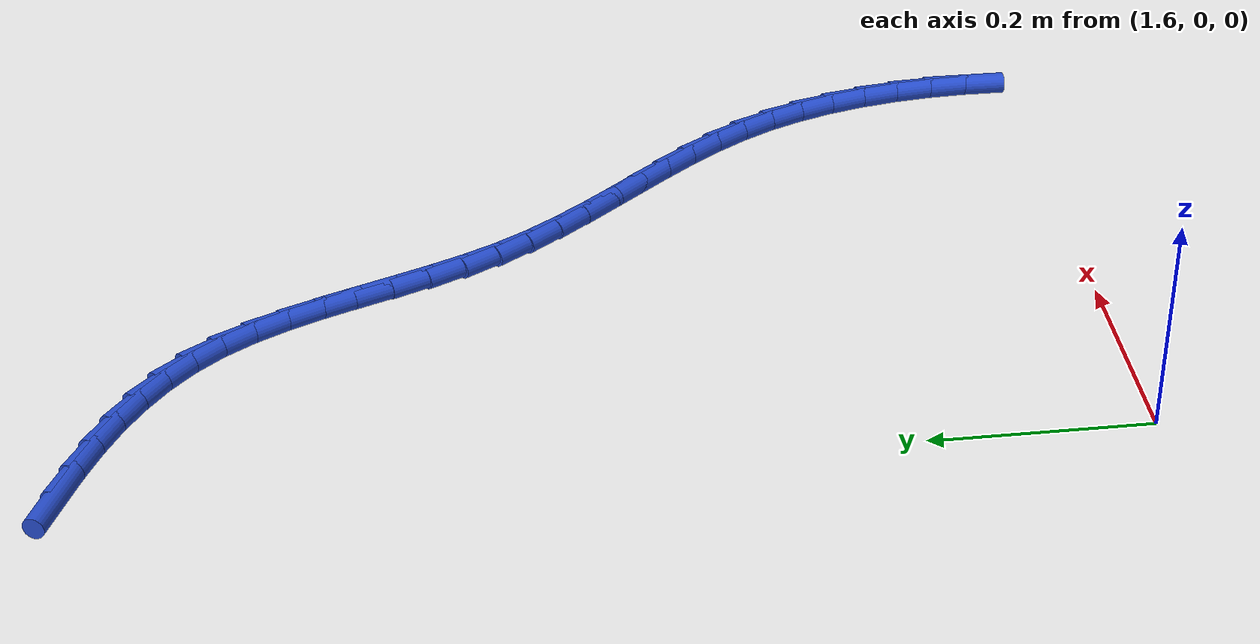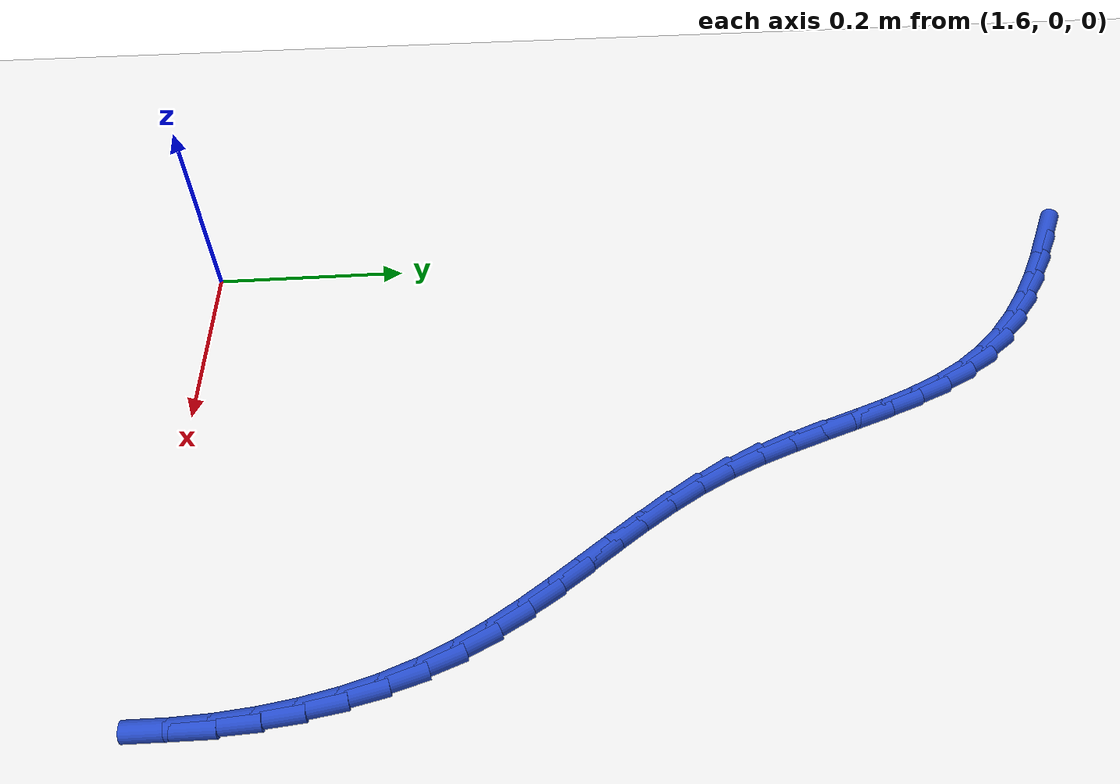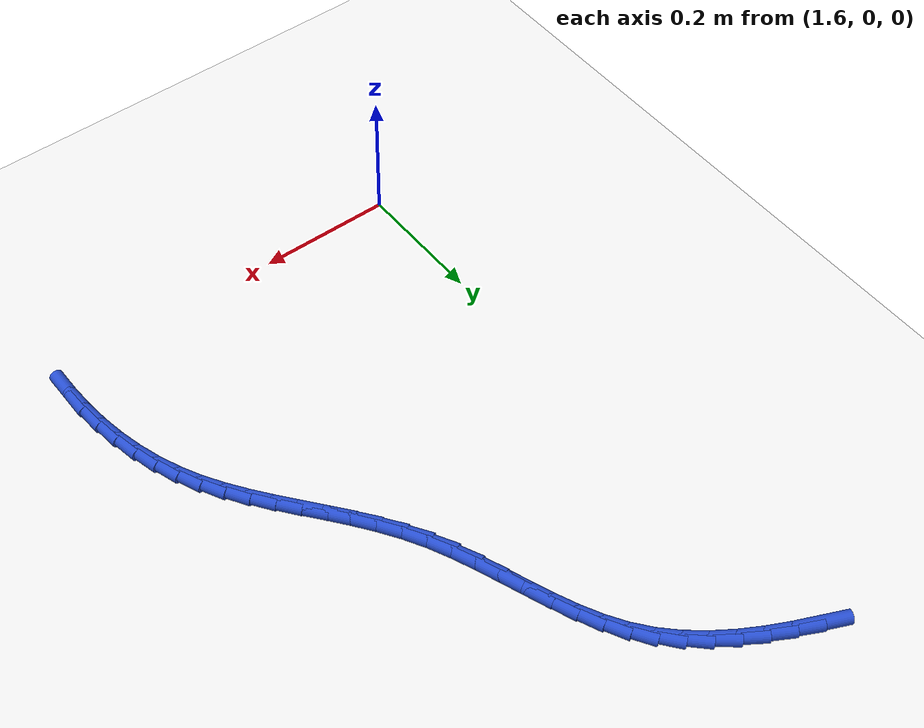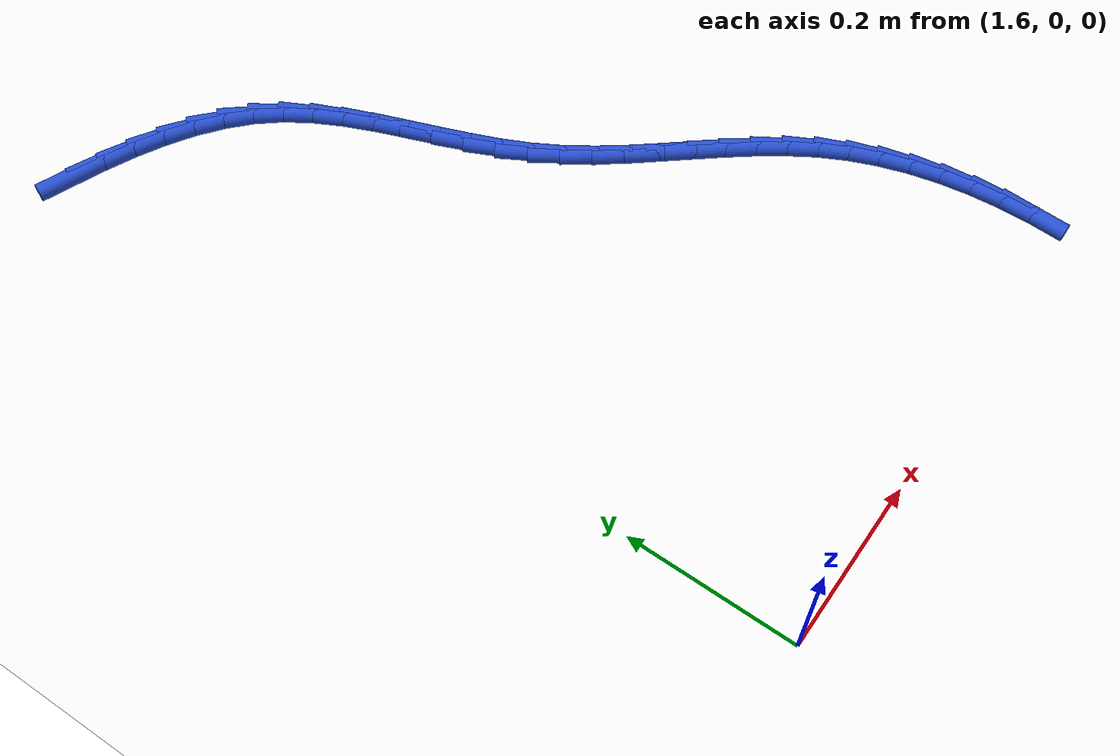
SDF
<sdf version="1.6">
 <world name="default">
  <model name="ground_plane">
   <static>1</static>
   <link name="link">
    <collision name="collision">
     <geometry><plane><normal>0 0 1</normal><size>100 100</size></plane></geometry>
     <surface><friction><ode><mu>100</mu><mu2>50</mu2></ode></friction></surface>
    </collision>
    <visual name="visual">
     <cast_shadows>0</cast_shadows>
     <geometry><plane><normal>0 0 1</normal><size>100 100</size></plane></geometry>
     <material>
      <script><uri>file://media/materials/scripts/gazebo.material</uri><name>Gazebo/WhiteGlow</name></script>
     </material>
    </visual>
   </link>
  </model>
  <model name="line">
   <link name="link_63">
    <pose>1.5988681709228885 0.9290407724739453 0.01 0 1.57 -0.4173383969233208</pose>
    <collision name="collision">
     <geometry><cylinder><radius>0.01</radius><length>0.08</length></cylinder></geometry>
    </collision>
    <visual name="visual">
     <material>
      <script><name>Gazebo/Blue</name><uri>file://media/materials/scripts/gazebo.material</uri></script>
     </material>
     <geometry><cylinder><radius>0.01</radius><length>0.08</length></cylinder></geometry>
    </visual>
   </link>
   <link name="link_64">
    <pose>1.6323205560718876 0.9142085224772634 0.01 0 1.57 -0.4614326083498727</pose>
    <collision name="collision">
     <geometry><cylinder><radius>0.01</radius><length>0.08</length></cylinder></geometry>
    </collision>
    <visual name="visual">
     <material>
      <script><name>Gazebo/Blue</name><uri>file://media/materials/scripts/gazebo.material</uri></script>
     </material>
     <geometry><cylinder><radius>0.01</radius><length>0.08</length></cylinder></geometry>
    </visual>
   </link>
   <link name="link_65">
    <pose>1.6646325838140654 0.8981418737335178 0.01 0 1.57 -0.5178692333564154</pose>
    <collision name="collision">
     <geometry><cylinder><radius>0.01</radius><length>0.08</length></cylinder></geometry>
    </collision>
    <visual name="visual">
     <material>
      <script><name>Gazebo/Blue</name><uri>file://media/materials/scripts/gazebo.material</uri></script>
     </material>
     <geometry><cylinder><radius>0.01</radius><length>0.08</length></cylinder></geometry>
    </visual>
   </link>
   <link name="link_66">
    <pose>1.6954367491383648 0.880591632293956 0.01 0 1.57 -0.5879347026942255</pose>
    <collision name="collision">
     <geometry><cylinder><radius>0.01</radius><length>0.08</length></cylinder></geometry>
    </collision>
    <visual name="visual">
     <material>
      <script><name>Gazebo/Blue</name><uri>file://media/materials/scripts/gazebo.material</uri></script>
     </material>
     <geometry><cylinder><radius>0.01</radius><length>0.08</length></cylinder></geometry>
    </visual>
   </link>
   <link name="link_67">
    <pose>1.7243655470337278 0.8613086042098229 0.01 0 1.57 -0.6728247970018595</pose>
    <collision name="collision">
     <geometry><cylinder><radius>0.01</radius><length>0.08</length></cylinder></geometry>
    </collision>
    <visual name="visual">
     <material>
      <script><name>Gazebo/Blue</name><uri>file://media/materials/scripts/gazebo.material</uri></script>
     </material>
     <geometry><cylinder><radius>0.01</radius><length>0.08</length></cylinder></geometry>
    </visual>
   </link>
   <link name="link_68">
    <pose>1.751051472489097 0.8400435955323653 0.01 0 1.57 -0.7732200036332522</pose>
    <collision name="collision">
     <geometry><cylinder><radius>0.01</radius><length>0.08</length></cylinder></geometry>
    </collision>
    <visual name="visual">
     <material>
      <script><name>Gazebo/Blue</name><uri>file://media/materials/scripts/gazebo.material</uri></script>
     </material>
     <geometry><cylinder><radius>0.01</radius><length>0.08</length></cylinder></geometry>
    </visual>
   </link>
   <link name="link_69">
    <pose>1.7751270204934155 0.816547412312829 0.01 0 1.57 -0.8884469797744952</pose>
    <collision name="collision">
     <geometry><cylinder><radius>0.01</radius><length>0.08</length></cylinder></geometry>
    </collision>
    <visual name="visual">
     <material>
      <script><name>Gazebo/Blue</name><uri>file://media/materials/scripts/gazebo.material</uri></script>
     </material>
     <geometry><cylinder><radius>0.01</radius><length>0.08</length></cylinder></geometry>
    </visual>
   </link>
   <link name="link_70">
    <pose>1.7962307985469577 0.7905752718939711 0.01 0 1.57 -1.002557221418333</pose>
    <collision name="collision">
     <geometry><cylinder><radius>0.01</radius><length>0.08</length></cylinder></geometry>
    </collision>
    <visual name="visual">
     <material>
      <script><name>Gazebo/Blue</name><uri>file://media/materials/scripts/gazebo.material</uri></script>
     </material>
     <geometry><cylinder><radius>0.01</radius><length>0.08</length></cylinder></geometry>
    </visual>
   </link>
   <link name="link_71">
    <pose>1.8143775240884341 0.762153823520802 0.01 0 1.57 -1.0919322125695714</pose>
    <collision name="collision">
     <geometry><cylinder><radius>0.01</radius><length>0.08</length></cylinder></geometry>
    </collision>
    <visual name="visual">
     <material>
      <script><name>Gazebo/Blue</name><uri>file://media/materials/scripts/gazebo.material</uri></script>
     </material>
     <geometry><cylinder><radius>0.01</radius><length>0.08</length></cylinder></geometry>
    </visual>
   </link>
   <link name="link_72">
    <pose>1.8301703311826651 0.7317343663287547 0.01 0 1.57 -1.1551238597769664</pose>
    <collision name="collision">
     <geometry><cylinder><radius>0.01</radius><length>0.08</length></cylinder></geometry>
    </collision>
    <visual name="visual">
     <material>
      <script><name>Gazebo/Blue</name><uri>file://media/materials/scripts/gazebo.material</uri></script>
     </material>
     <geometry><cylinder><radius>0.01</radius><length>0.08</length></cylinder></geometry>
    </visual>
   </link>
   <link name="link_73">
    <pose>1.8442636123120983 0.6998051917482832 0.01 0 1.57 -1.1937505870118894</pose>
    <collision name="collision">
     <geometry><cylinder><radius>0.01</radius><length>0.08</length></cylinder></geometry>
    </collision>
    <visual name="visual">
     <material>
      <script><name>Gazebo/Blue</name><uri>file://media/materials/scripts/gazebo.material</uri></script>
     </material>
     <geometry><cylinder><radius>0.01</radius><length>0.08</length></cylinder></geometry>
    </visual>
   </link>
   <link name="link_74">
    <pose>1.857311759959182 0.6668545912098414 0.01 0 1.57 -1.2093836196752894</pose>
    <collision name="collision">
     <geometry><cylinder><radius>0.01</radius><length>0.08</length></cylinder></geometry>
    </collision>
    <visual name="visual">
     <material>
      <script><name>Gazebo/Blue</name><uri>file://media/materials/scripts/gazebo.material</uri></script>
     </material>
     <geometry><cylinder><radius>0.01</radius><length>0.08</length></cylinder></geometry>
    </visual>
   </link>
   <link name="link_75">
    <pose>1.8699691666063638 0.6333708561438837 0.01 0 1.57 -1.2029613937634909</pose>
    <collision name="collision">
     <geometry><cylinder><radius>0.01</radius><length>0.08</length></cylinder></geometry>
    </collision>
    <visual name="visual">
     <material>
      <script><name>Gazebo/Blue</name><uri>file://media/materials/scripts/gazebo.material</uri></script>
     </material>
     <geometry><cylinder><radius>0.01</radius><length>0.08</length></cylinder></geometry>
    </visual>
   </link>
   <link name="link_76">
    <pose>1.882890224736092 0.5998422779808654 0.01 0 1.57 -1.1746247866357813</pose>
    <collision name="collision">
     <geometry><cylinder><radius>0.01</radius><length>0.08</length></cylinder></geometry>
    </collision>
    <visual name="visual">
     <material>
      <script><name>Gazebo/Blue</name><uri>file://media/materials/scripts/gazebo.material</uri></script>
     </material>
     <geometry><cylinder><radius>0.01</radius><length>0.08</length></cylinder></geometry>
    </visual>
   </link>
   <link name="link_77">
    <pose>1.8967293268308152 0.5667571481512397 0.01 0 1.57 -1.1238348388316277</pose>
    <collision name="collision">
     <geometry><cylinder><radius>0.01</radius><length>0.08</length></cylinder></geometry>
    </collision>
    <visual name="visual">
     <material>
      <script><name>Gazebo/Blue</name><uri>file://media/materials/scripts/gazebo.material</uri></script>
     </material>
     <geometry><cylinder><radius>0.01</radius><length>0.08</length></cylinder></geometry>
    </visual>
   </link>
   <link name="link_78">
    <pose>1.9121408653729812 0.5346037580854613 0.01 0 1.57 -1.0523834458855827</pose>
    <collision name="collision">
     <geometry><cylinder><radius>0.01</radius><length>0.08</length></cylinder></geometry>
    </collision>
    <visual name="visual">
     <material>
      <script><name>Gazebo/Blue</name><uri>file://media/materials/scripts/gazebo.material</uri></script>
     </material>
     <geometry><cylinder><radius>0.01</radius><length>0.08</length></cylinder></geometry>
    </visual>
   </link>
   <link name="link_79">
    <pose>1.9297023918318315 0.5038187079826444 0.01 0 1.57 -0.9847171923175909</pose>
    <collision name="collision">
     <geometry><cylinder><radius>0.01</radius><length>0.08</length></cylinder></geometry>
    </collision>
    <visual name="visual">
     <material>
      <script><name>Gazebo/Blue</name><uri>file://media/materials/scripts/gazebo.material</uri></script>
     </material>
     <geometry><cylinder><radius>0.01</radius><length>0.08</length></cylinder></geometry>
    </visual>
   </link>
   <link name="link_80">
    <pose>1.949266029471373 0.4743505998282799 0.01 0 1.57 -0.9348524247265183</pose>
    <collision name="collision">
     <geometry><cylinder><radius>0.01</radius><length>0.08</length></cylinder></geometry>
    </collision>
    <visual name="visual">
     <material>
      <script><name>Gazebo/Blue</name><uri>file://media/materials/scripts/gazebo.material</uri></script>
     </material>
     <geometry><cylinder><radius>0.01</radius><length>0.08</length></cylinder></geometry>
    </visual>
   </link>
   <link name="link_81">
    <pose>1.9702849396189714 0.4458796524501878 0.01 0 1.57 -0.902978723196526</pose>
    <collision name="collision">
     <geometry><cylinder><radius>0.01</radius><length>0.08</length></cylinder></geometry>
    </collision>
    <visual name="visual">
     <material>
      <script><name>Gazebo/Blue</name><uri>file://media/materials/scripts/gazebo.material</uri></script>
     </material>
     <geometry><cylinder><radius>0.01</radius><length>0.08</length></cylinder></geometry>
    </visual>
   </link>
   <link name="link_82">
    <pose>1.992208146357652 0.41808330153675016 0.01 0 1.57 -0.8889624168271291</pose>
    <collision name="collision">
     <geometry><cylinder><radius>0.01</radius><length>0.08</length></cylinder></geometry>
    </collision>
    <visual name="visual">
     <material>
      <script><name>Gazebo/Blue</name><uri>file://media/materials/scripts/gazebo.material</uri></script>
     </material>
     <geometry><cylinder><radius>0.01</radius><length>0.08</length></cylinder></geometry>
    </visual>
   </link>
   <link name="link_83">
    <pose>2.014484673770439 0.3906389827763488 0.01 0 1.57 -0.8927945681825561</pose>
    <collision name="collision">
     <geometry><cylinder><radius>0.01</radius><length>0.08</length></cylinder></geometry>
    </collision>
    <visual name="visual">
     <material>
      <script><name>Gazebo/Blue</name><uri>file://media/materials/scripts/gazebo.material</uri></script>
     </material>
     <geometry><cylinder><radius>0.01</radius><length>0.08</length></cylinder></geometry>
    </visual>
   </link>
   <link name="link_84">
    <pose>2.036563545940356 0.36322413185736496 0.01 0 1.57 -0.9147281511271506</pose>
    <collision name="collision">
     <geometry><cylinder><radius>0.01</radius><length>0.08</length></cylinder></geometry>
    </collision>
    <visual name="visual">
     <material>
      <script><name>Gazebo/Blue</name><uri>file://media/materials/scripts/gazebo.material</uri></script>
     </material>
     <geometry><cylinder><radius>0.01</radius><length>0.08</length></cylinder></geometry>
    </visual>
   </link>
   <link name="link_85">
    <pose>2.0578937869504283 0.3355161844681805 0.01 0 1.57 -0.9552502801628399</pose>
    <collision name="collision">
     <geometry><cylinder><radius>0.01</radius><length>0.08</length></cylinder></geometry>
    </collision>
    <visual name="visual">
     <material>
      <script><name>Gazebo/Blue</name><uri>file://media/materials/scripts/gazebo.material</uri></script>
     </material>
     <geometry><cylinder><radius>0.01</radius><length>0.08</length></cylinder></geometry>
    </visual>
   </link>
   <link name="link_86">
    <pose>2.0779244208836807 0.3071925762971776 0.01 0 1.57 -1.0148701508809752</pose>
    <collision name="collision">
     <geometry><cylinder><radius>0.01</radius><length>0.08</length></cylinder></geometry>
    </collision>
    <visual name="visual">
     <material>
      <script><name>Gazebo/Blue</name><uri>file://media/materials/scripts/gazebo.material</uri></script>
     </material>
     <geometry><cylinder><radius>0.01</radius><length>0.08</length></cylinder></geometry>
    </visual>
   </link>
   <link name="link_87">
    <pose>2.0961044718231374 0.27793074303273724 0.01 0 1.57 -1.092798738407912</pose>
    <collision name="collision">
     <geometry><cylinder><radius>0.01</radius><length>0.08</length></cylinder></geometry>
    </collision>
    <visual name="visual">
     <material>
      <script><name>Gazebo/Blue</name><uri>file://media/materials/scripts/gazebo.material</uri></script>
     </material>
     <geometry><cylinder><radius>0.01</radius><length>0.08</length></cylinder></geometry>
    </visual>
   </link>
   <link name="link_88">
    <pose>2.1119077658964964 0.24742647862629316 0.01 0 1.57 -1.1759101175861373</pose>
    <collision name="collision">
     <geometry><cylinder><radius>0.01</radius><length>0.08</length></cylinder></geometry>
    </collision>
    <visual name="visual">
     <material>
      <script><name>Gazebo/Blue</name><uri>file://media/materials/scripts/gazebo.material</uri></script>
     </material>
     <geometry><cylinder><radius>0.01</radius><length>0.08</length></cylinder></geometry>
    </visual>
   </link>
   <link name="link_89">
    <pose>2.1251579629718957 0.21563452099603322 0.01 0 1.57 -1.2544719288014043</pose>
    <collision name="collision">
     <geometry><cylinder><radius>0.01</radius><length>0.08</length></cylinder></geometry>
    </collision>
    <visual name="visual">
     <material>
      <script><name>Gazebo/Blue</name><uri>file://media/materials/scripts/gazebo.material</uri></script>
     </material>
     <geometry><cylinder><radius>0.01</radius><length>0.08</length></cylinder></geometry>
    </visual>
   </link>
   <link name="link_90">
    <pose>2.1359375415523556 0.18270118341791985 0.01 0 1.57 -1.3281344441690721</pose>
    <collision name="collision">
     <geometry><cylinder><radius>0.01</radius><length>0.08</length></cylinder></geometry>
    </collision>
    <visual name="visual">
     <material>
      <script><name>Gazebo/Blue</name><uri>file://media/materials/scripts/gazebo.material</uri></script>
     </material>
     <geometry><cylinder><radius>0.01</radius><length>0.08</length></cylinder></geometry>
    </visual>
   </link>
   <link name="link_91">
    <pose>2.144335059458974 0.14877727902758056 0.01 0 1.57 -1.3969820353934561</pose>
    <collision name="collision">
     <geometry><cylinder><radius>0.01</radius><length>0.08</length></cylinder></geometry>
    </collision>
    <visual name="visual">
     <material>
      <script><name>Gazebo/Blue</name><uri>file://media/materials/scripts/gazebo.material</uri></script>
     </material>
     <geometry><cylinder><radius>0.01</radius><length>0.08</length></cylinder></geometry>
    </visual>
   </link>
   <link name="link_92">
    <pose>2.1504390745128505 0.11401362096064392 0.01 0 1.57 -1.4612567497083986</pose>
    <collision name="collision">
     <geometry><cylinder><radius>0.01</radius><length>0.08</length></cylinder></geometry>
    </collision>
    <visual name="visual">
     <material>
      <script><name>Gazebo/Blue</name><uri>file://media/materials/scripts/gazebo.material</uri></script>
     </material>
     <geometry><cylinder><radius>0.01</radius><length>0.08</length></cylinder></geometry>
    </visual>
   </link>
   <link name="link_93">
    <pose>2.1543381445350835 0.07856102235273855 0.01 0 1.57 -1.5213050472889438</pose>
    <collision name="collision">
     <geometry><cylinder><radius>0.01</radius><length>0.08</length></cylinder></geometry>
    </collision>
    <visual name="visual">
     <material>
      <script><name>Gazebo/Blue</name><uri>file://media/materials/scripts/gazebo.material</uri></script>
     </material>
     <geometry><cylinder><radius>0.01</radius><length>0.08</length></cylinder></geometry>
    </visual>
   </link>
   <link name="link_94">
    <pose>2.1561208273467716 0.042570296339492004 0.01 0 1.57 1.564057567228271</pose>
    <collision name="collision">
     <geometry><cylinder><radius>0.01</radius><length>0.08</length></cylinder></geometry>
    </collision>
    <visual name="visual">
     <material>
      <script><name>Gazebo/Blue</name><uri>file://media/materials/scripts/gazebo.material</uri></script>
     </material>
     <geometry><cylinder><radius>0.01</radius><length>0.08</length></cylinder></geometry>
    </visual>
   </link>
  </model>
 </world>
</sdf>
